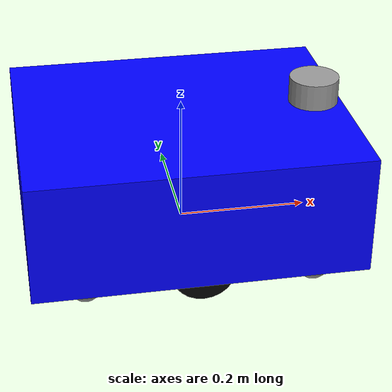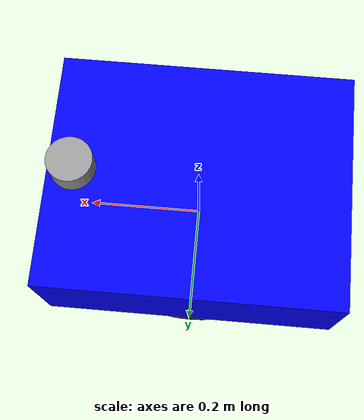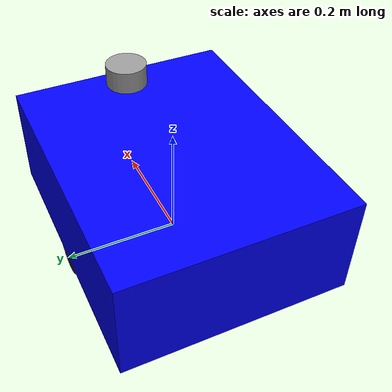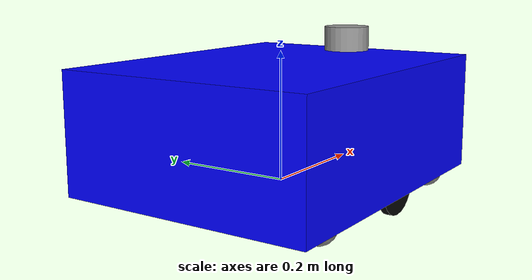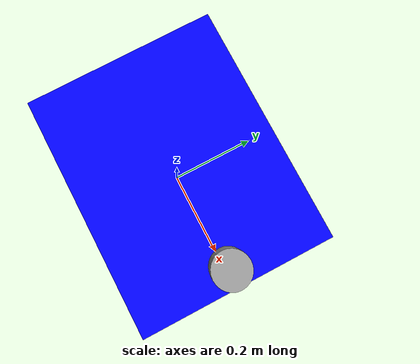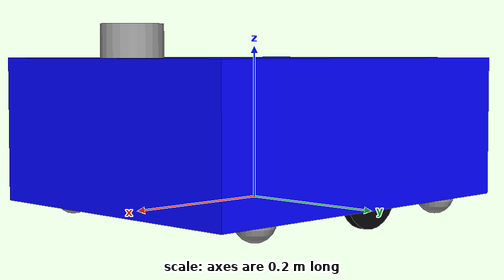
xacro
<?xml version="1.0"?>
<robot xmlns:xacro="http://www.ros.org/wiki/xacro" name="four_wheel_sensor_bot">

  <!-- gam xe: dat -> mat duoi de -->
  <xacro:property name="ground_clearance" value="0.020"/>
  <!-- be day tam de -->
  <xacro:property name="plate_thickness"  value="0.002"/>
  <!-- cao do cua base_link so voi mat dat. MOI link khac deu tinh tu day. -->
  <xacro:property name="base_z" value="${ground_clearance + plate_thickness}"/>

  <xacro:property name="body_length" value="0.50"/>
  <xacro:property name="body_width"  value="0.40"/>
  <!-- TAM THOI cho noc khung = mat de LiDAR (16.5 cm tren base_link).
       Khi hoan thien khung thi sua dung 1 so nay. -->
  <xacro:property name="body_height" value="0.185"/>
  <!-- TODO: can robot that roi sua. 12 kg chi la uoc luong. -->
  <xacro:property name="body_mass"   value="12.0"/>

  <!-- Banh dan dong: D = 95 mm -->
  <xacro:property name="wheel_radius" value="0.0475"/>
  <!-- Suy ra tu "banh loi ra ngoai than 0.2 mm moi ben":
       0.195 + w/2 = 0.200 + 0.0002  ->  w = 0.0104
       TODO: do lai be day banh that. -->
  <xacro:property name="wheel_width"  value="0.0104"/>
  <xacro:property name="wheel_mass"   value="0.5"/>

  <xacro:property name="wheel_separation" value="0.389"/>
  <xacro:property name="wheel_y" value="${wheel_separation / 2.0}"/>
  <!-- truc banh phai o dung do cao ban kinh banh so voi MAT DAT,
       ma base_link lai cao hon dat base_z  ->  tru di.
       = 0.0475 - 0.022 = 0.0255  (khop so ban tu tinh) -->
  <xacro:property name="wheel_z" value="${wheel_radius - base_z}"/>

  <!-- Banh do: d = 50 mm -->
  <xacro:property name="caster_radius" value="0.025"/>
  <xacro:property name="caster_mass"   value="0.3"/>
  <xacro:property name="caster_x"      value="0.17"/>
  <xacro:property name="caster_y"      value="0.17"/>

  <xacro:macro name="box_inertial" params="mass x y z">
    <inertial>
      <origin xyz="0 0 ${z/2}" rpy="0 0 0"/>
      <mass value="${mass}"/>
      <inertia
        ixx="${mass * (y*y + z*z) / 12.0}" ixy="0.0" ixz="0.0"
        iyy="${mass * (x*x + z*z) / 12.0}" iyz="0.0"
        izz="${mass * (x*x + y*y) / 12.0}"/>
    </inertial>
  </xacro:macro>

  <xacro:macro name="cylinder_z_inertial" params="mass radius length">
    <inertial>
      <origin xyz="0 0 0" rpy="0 0 0"/>
      <mass value="${mass}"/>
      <inertia
        ixx="${mass * (3.0*radius*radius + length*length) / 12.0}" ixy="0.0" ixz="0.0"
        iyy="${mass * (3.0*radius*radius + length*length) / 12.0}" iyz="0.0"
        izz="${mass * radius*radius / 2.0}"/>
    </inertial>
  </xacro:macro>

  <xacro:macro name="sphere_inertial" params="mass radius">
    <inertial>
      <origin xyz="0 0 0" rpy="0 0 0"/>
      <mass value="${mass}"/>
      <inertia
        ixx="${(2.0/5.0) * mass * radius * radius}" ixy="0.0" ixz="0.0"
        iyy="${(2.0/5.0) * mass * radius * radius}" iyz="0.0"
        izz="${(2.0/5.0) * mass * radius * radius}"/>
    </inertial>
  </xacro:macro>

  <material name="blue"><color rgba="0.0 0.0 1.0 1.0"/></material>
  <material name="black"><color rgba="0.02 0.02 0.02 1.0"/></material>
  <material name="gray"><color rgba="0.6 0.6 0.6 1.0"/></material>
  <material name="green"><color rgba="0.0 1.0 0.0 1.0"/></material>

  <link name="base_link">
    <visual>
      <origin xyz="0 0 ${body_height/2}" rpy="0 0 0"/>
      <geometry>
        <box size="${body_length} ${body_width} ${body_height}"/>
      </geometry>
      <material name="blue"/>
    </visual>

    <collision>
      <origin xyz="0 0 ${body_height/2}" rpy="0 0 0"/>
      <geometry>
        <box size="${body_length} ${body_width} ${body_height}"/>
      </geometry>
    </collision>

    <xacro:box_inertial
      mass="${body_mass}"
      x="${body_length}"
      y="${body_width}"
      z="${body_height}"/>
  </link>
  <!-- footprint = hinh chieu xuong MAT DAT.
       base_link cao hon mat dat base_z (= gam 20mm + de 2mm) -->
  <joint name="base_footprint_joint" type="fixed">
    <parent link="base_link"/>
    <child link="base_footprint"/>
    <origin xyz="0 0 ${-base_z}" rpy="0 0 0"/>
  </joint>

  <link name="base_footprint">
  </link>
  <link name="left_wheel_link">
    <visual>
      <origin xyz="0 0 0" rpy="0 0 0"/>
      <geometry>
        <cylinder length="${wheel_width}" radius="${wheel_radius}"/>
      </geometry>
      <material name="black"/>
    </visual>
    <collision>
      <origin xyz="0 0 0" rpy="0 0 0"/>
      <geometry>
        <cylinder length="${wheel_width}" radius="${wheel_radius}"/>
      </geometry>
    </collision>
    <xacro:cylinder_z_inertial mass="${wheel_mass}" radius="${wheel_radius}" length="${wheel_width}"/>
  </link>

  <joint name="left_wheel_joint" type="continuous">
    <parent link="base_link"/>
    <child link="left_wheel_link"/>
    <origin xyz="0 ${wheel_y} ${wheel_z}" rpy="-1.5707963 0 0"/>
    <axis xyz="0 0 1"/>
    <dynamics damping="0.05" friction="0.0"/>
  </joint>

  <gazebo reference="left_wheel_link">
    <mu1 value="3.0"/>
    <mu2 value="3.0"/>
  </gazebo>

  <link name="right_wheel_link">
    <visual>
      <origin xyz="0 0 0" rpy="0 0 0"/>
      <geometry>
        <cylinder length="${wheel_width}" radius="${wheel_radius}"/>
      </geometry>
      <material name="black"/>
    </visual>
    <collision>
      <origin xyz="0 0 0" rpy="0 0 0"/>
      <geometry>
        <cylinder length="${wheel_width}" radius="${wheel_radius}"/>
      </geometry>
    </collision>
    <xacro:cylinder_z_inertial mass="${wheel_mass}" radius="${wheel_radius}" length="${wheel_width}"/>
  </link>

  <joint name="right_wheel_joint" type="continuous">
    <parent link="base_link"/>
    <child link="right_wheel_link"/>
    <origin xyz="0 ${-wheel_y} ${wheel_z}" rpy="1.5707963 0 0"/>
    <axis xyz="0 0 -1"/>
    <dynamics damping="0.05" friction="0.0"/>
  </joint>

  <gazebo reference="right_wheel_link">
    <mu1 value="3.0"/>
    <mu2 value="3.0"/>
  </gazebo>

  <xacro:macro name="caster_wheel" params="name x y">
    <link name="${name}_caster_link">
      <visual>
        <geometry>
          <sphere radius="${caster_radius}"/>
        </geometry>
        <material name="gray"/>
      </visual>
      <collision>
        <geometry>
          <sphere radius="${caster_radius}"/>
        </geometry>
      </collision>
      <xacro:sphere_inertial mass="${caster_mass}" radius="${caster_radius}"/>
    </link>

    <joint name="${name}_caster_joint" type="fixed">
      <parent link="base_link"/>
      <child link="${name}_caster_link"/>
      <origin xyz="${x} ${y} ${caster_radius - base_z}" rpy="0 0 0"/>
    </joint>

    <gazebo reference="${name}_caster_link">
      <mu1 value="0.0"/>
      <mu2 value="0.0"/>
    </gazebo>
  </xacro:macro>

  <xacro:caster_wheel name="front_left"  x="${caster_x}"  y="${caster_y}"/>
  <xacro:caster_wheel name="front_right" x="${caster_x}"  y="${-caster_y}"/>
  <xacro:caster_wheel name="rear_left"   x="${-caster_x}" y="${caster_y}"/>
  <xacro:caster_wheel name="rear_right"  x="${-caster_x}" y="${-caster_y}"/>

  <xacro:include filename="sensor.xacro"/>
  <xacro:include filename="gazebo_control.xacro"/>

  <xacro:sensors parent="base_link"/>

</robot>

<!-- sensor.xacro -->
<robot xmlns:xacro="http://www.ros.org/wiki/xacro">

  <!-- RPLIDAR A2M8 : D 76 mm, cao 41 mm, ~190 g
       TODO: doi chieu lai voi con hang that cua ban. -->
  <xacro:property name="lidar_radius" value="0.038"/>
  <xacro:property name="lidar_length" value="0.041"/>
  <xacro:property name="lidar_mass"   value="0.19"/>
  <xacro:property name="lidar_optical_offset" value="0.030"/>

  <xacro:property name="imu_length" value="0.05"/>
  <xacro:property name="imu_width"  value="0.05"/>
  <xacro:property name="imu_height" value="0.02"/>
  <xacro:property name="imu_mass"   value="0.02"/>

  <xacro:property name="lidar_x" value="${body_length/2 - 0.005 - lidar_radius}"/>
  <xacro:property name="lidar_y" value="0.00"/>
  <xacro:property name="lidar_z" value="${body_height + lidar_optical_offset}"/>

  <!-- IMU gan trong than xe, gan tam quay cang tot -->
  <xacro:property name="imu_x" value="0.00"/>
  <xacro:property name="imu_y" value="0.00"/>
  <xacro:property name="imu_z" value="${body_height/2}"/>

  <xacro:macro name="sensors" params="parent">

    <link name="lidar_link">
      <!-- lidar_link o TAM QUANG HOC; than vat ly nam thap hon,
           nen visual/collision phai bu lai offset. -->
      <visual>
        <origin xyz="0 0 ${lidar_length/2 - lidar_optical_offset}" rpy="0 0 0"/>
        <geometry>
          <cylinder length="${lidar_length}" radius="${lidar_radius}"/>
        </geometry>
        <material name="gray"/>
      </visual>

      <collision>
        <origin xyz="0 0 ${lidar_length/2 - lidar_optical_offset}" rpy="0 0 0"/>
        <geometry>
          <cylinder length="${lidar_length}" radius="${lidar_radius}"/>
        </geometry>
      </collision>

      <xacro:cylinder_z_inertial
        mass="${lidar_mass}"
        radius="${lidar_radius}"
        length="${lidar_length}"/>
    </link>

    <joint name="lidar_joint" type="fixed">
      <parent link="${parent}"/>
      <child link="lidar_link"/>
      <origin xyz="${lidar_x} ${lidar_y} ${lidar_z}" rpy="0 0 ${pi}"/>
    </joint>

    <gazebo reference="lidar_link">
      <sensor name="lidar_sensor" type="gpu_lidar">
        <pose>0 0 0 0 0 0</pose>
        <topic>/scan</topic>
        <update_rate>10</update_rate>
        <always_on>true</always_on>
        <visualize>true</visualize>

        <lidar>
          <scan>
            <horizontal>
              <!-- A2M8 ~400-800 diem/vong tuy scan_mode. Kiem tra bang:
                   ros2 topic echo /scan (once) roi dem so phan tu ranges -->
              <samples>500</samples>
              <resolution>1</resolution>
              <min_angle>-3.14159</min_angle>
              <max_angle>3.14159</max_angle>
            </horizontal>
          </scan>
          <range>
            <!-- A2M8: vung mu 0.15 m. De 0.05 la sim "sach" hon that. -->
            <min>0.15</min>
            <max>12.0</max>
            <resolution>0.015</resolution>
          </range>
        </lidar>
      </sensor>
    </gazebo>

    <link name="imu_link">
      <visual>
        <geometry>
          <box size="${imu_length} ${imu_width} ${imu_height}"/>
        </geometry>
        <material name="green"/>
      </visual>

      <collision>
        <geometry>
          <box size="${imu_length} ${imu_width} ${imu_height}"/>
        </geometry>
      </collision>

      <xacro:box_inertial
        mass="${imu_mass}"
        x="${imu_length}"
        y="${imu_width}"
        z="${imu_height}"/>
    </link>

    <joint name="imu_joint" type="fixed">
      <parent link="${parent}"/>
      <child link="imu_link"/>
      <origin xyz="${imu_x} ${imu_y} ${imu_z}" rpy="0 0 0"/>
    </joint>

    <gazebo reference="imu_link">
      <sensor name="imu_sensor" type="imu">
        <always_on>true</always_on>
        <update_rate>100</update_rate>
        <topic>/imu</topic>
      </sensor>
    </gazebo>

  </xacro:macro>

</robot>
